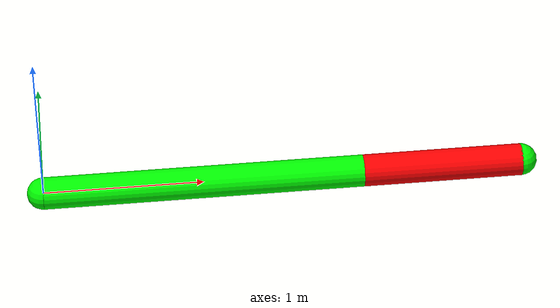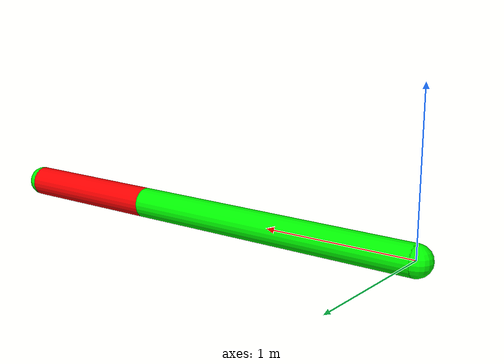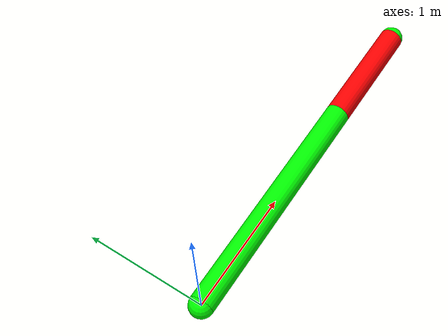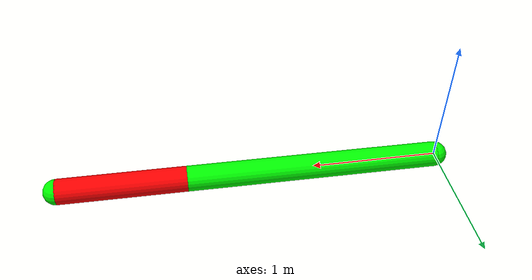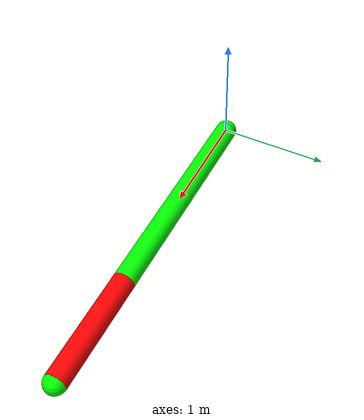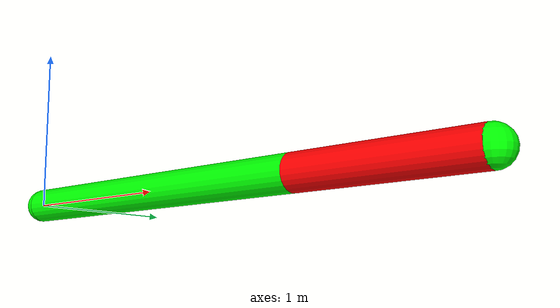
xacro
<?xml version="1.0"?>
<robot name="two_link_arm" xmlns:xacro="http://www.ros.org/wiki/xacro">

<xacro:property name="l1" value="2.0" />
<xacro:property name="l2" value="1.0" />

<link name="base" >
  <visual>
    <geometry>
      <sphere radius="0.1" />
    </geometry>
    <material name="green_mat">
      <color rgba="0 1 0 1" />
    </material>
  </visual>
</link>

<link name="L1">
  <visual>
    <origin xyz="${l1/2} 0 0" rpy="${pi/2} 0 ${-pi/2}" />
    <geometry>
      <cylinder radius="0.1" length="${l1}" />
    </geometry>
    <material name="green_mat">
      <color rgba="0 1 0 1" />
    </material>
  </visual>
</link>

<link name="L2">
  <visual>
    <origin xyz="${l2/2} 0 0" rpy="${pi/2} 0 ${-pi/2}" />
    <geometry>
      <cylinder radius="0.1" length="${l2}" />
    </geometry>
    <material name="red_mat">
      <color rgba="1 0 0 1" />
    </material>
  </visual>
</link>

<link name="End_Effector">
  <visual>
    <origin xyz="0 0 0" rpy="0 0 0" />
    <geometry>
      <sphere radius="0.1" />
    </geometry>
    <material name="green_mat">
        <color rgba="0 1 0 0" />
    </material>
  </visual>
</link>

<joint name="joint1" type="continuous">
  <axis xyz="0 0 1"/>
  <parent link="base" />
  <child link="L1" />
</joint>

<joint name="joint2" type="continuous">
  <origin xyz="${l1} 0 0" rpy="0 0 0" />
  <axis xyz="0 0 1"/>
  <parent link="L1" />
  <child link="L2" />
</joint>

<joint name="end" type="continuous">
  <origin xyz="${l2} 0 0" rpy="0 0 0" />
  <parent link="L2" />
  <child link="End_Effector" />
</joint>

</robot>
